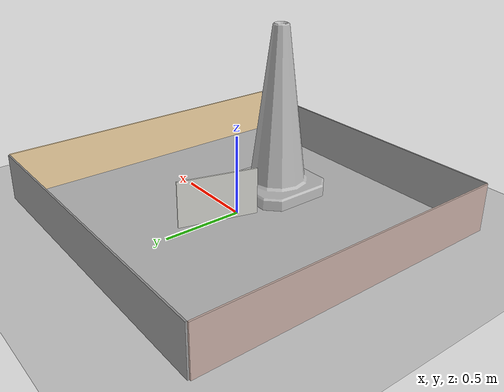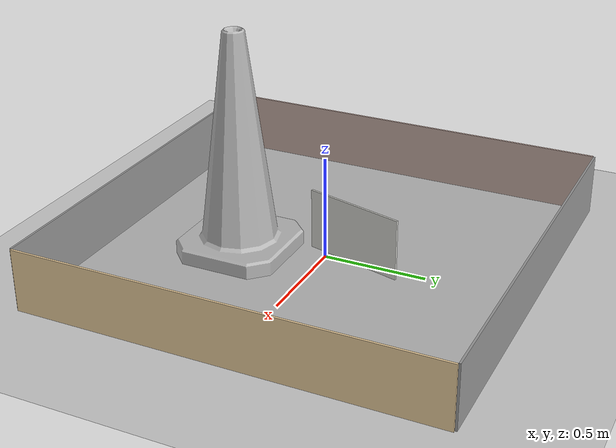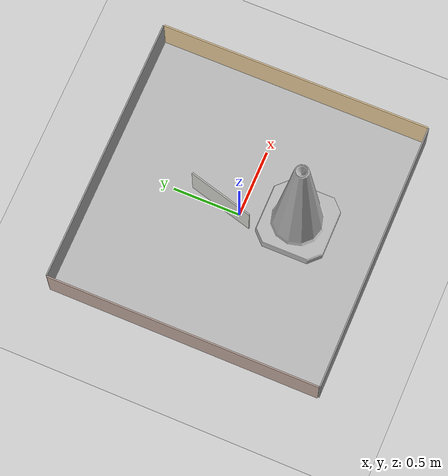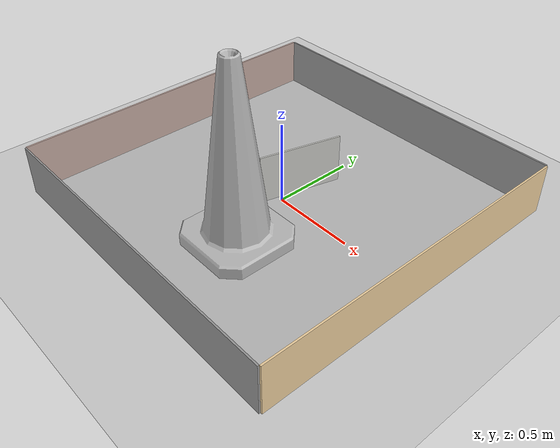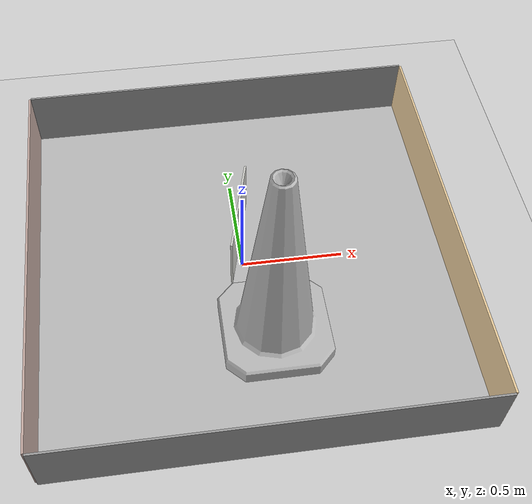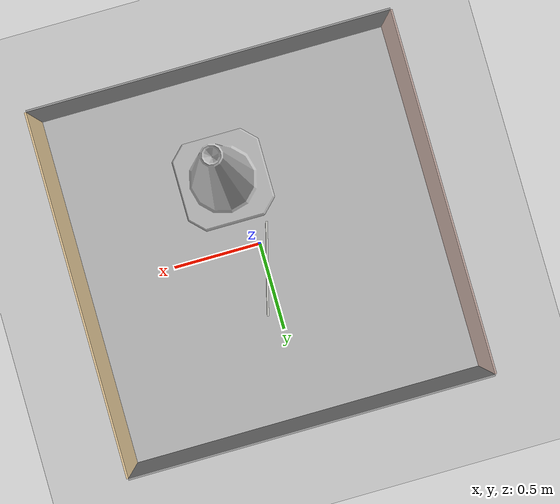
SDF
<sdf version="1.6">
 <world name="default">
  <gravity>0 0 -9.8</gravity>
  <magnetic_field>6e-06 2.3e-05 -4.2e-05</magnetic_field>
  <atmosphere type="adiabatic"/>
  <physics default="0" name="default_physics" type="ode">
   <max_step_size>0.001</max_step_size>
   <real_time_factor>1</real_time_factor>
   <real_time_update_rate>1000</real_time_update_rate>
  </physics>
  <scene><ambient>0.4 0.4 0.4 1</ambient><background>0.7 0.7 0.7 1</background><shadows>1</shadows></scene>
  <audio><device>default</device></audio>
  <spherical_coordinates>
   <surface_model>EARTH_WGS84</surface_model>
   <latitude_deg>0</latitude_deg>
   <longitude_deg>0</longitude_deg>
   <elevation>0</elevation>
   <heading_deg>0</heading_deg>
  </spherical_coordinates>
  <light name="sun" type="directional">
   <pose>0 0 10 0 -0 0</pose>
   <diffuse>0.8 0.8 0.8 1</diffuse>
   <specular>0.2 0.2 0.2 1</specular>
   <attenuation>
    <range>1000</range>
    <constant>0.9</constant>
    <linear>0.01</linear>
    <quadratic>0.001</quadratic>
   </attenuation>
   <direction>-0.5 0.1 -0.9</direction>
  </light>
  <include><uri>model://ground_plane</uri><name>ground_plane</name></include>
  <include>
   <uri>model://construction_cone</uri>
   <name>construction_cone</name>
   <pose>0.10 -0.40 0.00 0 -0 0</pose>
   <scale>0.2 0.2 0.2</scale>
  </include>
  <model name="pet_play_yard-02">
   <include><uri>model://pet_play_yard-floor02</uri><name>pet_play_yard-floor02</name></include>
   <link name="wall_obstacle-1">
    <pose>-0.000711 0.140953 0 0 -0 1.309</pose>
    <collision name="wall_obstacle-1_Collision">
     <geometry><box><size>0.5 0.01 0.3</size></box></geometry>
     <pose>0.00 0.00 0.15 0.0 -0.0 0.0</pose>
    </collision>
    <visual name="wall_obstacle-1_Visual">
     <pose>0.00 0.00 0.15 0 -0 0</pose>
     <geometry><box><size>0.5 0.01 0.3</size></box></geometry>
     <material>
      <script><uri>file://media/materials/scripts/gazebo.material</uri><name>Gazebo/CeilingTiled</name></script>
      <ambient>1 1 1 1</ambient>
     </material>
     <meta><layer>0</layer></meta>
    </visual>
   </link>
   <link name="wall_front">
    <pose>1.005 0.00 0.00 0 -0 -1.5707963268</pose>
    <collision name="wall_front_Collision">
     <geometry><box><size>2.0 0.01 0.3</size></box></geometry>
     <pose>0.00 0.00 0.15 0 -0 0</pose>
    </collision>
    <visual name="wall_front_Visual">
     <pose>0.00 0.00 0.15 0 -0 0</pose>
     <geometry><box><size>2.0 0.01 0.3</size></box></geometry>
     <material>
      <script><uri>file://media/materials/scripts/gazebo.material</uri><name>Gazebo/Grey</name></script>
      <ambient>0.921569 0.807843 0.615686 1</ambient>
     </material>
     <meta><layer>0</layer></meta>
    </visual>
   </link>
   <link name="wall_right">
    <pose>0.0 -1.005 0.0 0 -0 3.14159265359</pose>
    <collision name="wall_right_Collision">
     <geometry><box><size>2.0 0.01 0.3</size></box></geometry>
     <pose>0.00 0.00 0.15 0 -0 0</pose>
    </collision>
    <visual name="wall_right_Visual">
     <pose>0.00 0.00 0.15 0 -0 0</pose>
     <geometry><box><size>2.0 0.01 0.3</size></box></geometry>
     <material>
      <script><uri>file://media/materials/scripts/gazebo.material</uri><name>Gazebo/Grey</name></script>
      <ambient>1 1 1 1</ambient>
     </material>
     <meta><layer>0</layer></meta>
    </visual>
   </link>
   <link name="wall_rear">
    <pose>-1.005 0.00 0.00 0 -0 1.5707963268</pose>
    <collision name="wall_rear_Collision">
     <geometry><box><size>2.0 0.01 0.3</size></box></geometry>
     <pose>0.00 0.00 0.15 0 -0 0</pose>
    </collision>
    <visual name="wall_rear_Visual">
     <pose>0.00 0.00 0.15 0 -0 0</pose>
     <geometry><box><size>2.0 0.01 0.3</size></box></geometry>
     <material>
      <script><uri>file://media/materials/scripts/gazebo.material</uri><name>Gazebo/Grey</name></script>
      <ambient>0.760784 0.662745 0.627451 1</ambient>
     </material>
     <meta><layer>0</layer></meta>
    </visual>
   </link>
   <link name="wall_left">
    <pose>0.0 1.005 0.00 0 -0 0</pose>
    <collision name="wall_left_Collision">
     <geometry><box><size>2.0 0.01 0.3</size></box></geometry>
     <pose>0.00 0.00 0.15 0 -0 0</pose>
    </collision>
    <visual name="wall_left_Visual">
     <pose>0.00 0.00 0.15 0 -0 0</pose>
     <geometry><box><size>2.0 0.01 0.3</size></box></geometry>
     <material>
      <script><uri>file://media/materials/scripts/gazebo.material</uri><name>Gazebo/Grey</name></script>
      <ambient>1 1 1 1</ambient>
     </material>
     <meta><layer>0</layer></meta>
    </visual>
   </link>
   <static>1</static>
  </model>
 </world>
</sdf>

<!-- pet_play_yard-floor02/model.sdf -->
<sdf version="1.5">
  <model name="pet_play_yard-floor02">
    <!-- Floorimage "up" = "-x" -->
    <pose>0 0 0 0 0 0</pose>
    <link name="pet_play_yard-floor02_floor">
      <pose>0 0 0 0 0 3.1415</pose>

      <visual name="visual_floor">
        <geometry>
          <box>
            <!-- Floor size = 2x2m -->
            <size>2.0 2.0 1e-5</size>
          </box>
        </geometry>

        <material>
          <script>
            <uri>model://pet_play_yard-floor02/materials/scripts</uri>
            <uri>model://pet_play_yard-floor02/materials/textures</uri>
            <name>pet_play_yard-floor02</name>
          </script>
        </material>
        <pose>0 0 0.001 0 0 0</pose>
        <cast_shadows>1</cast_shadows>
        <transparency>0</transparency>
      </visual>

      <collision name="collision_floor">
        <pose>0 0 0.001 0 0 0</pose>
        <geometry>
          <box>
            <!-- Floor size = 2x2m -->
            <size>2.0 2.0 1e-5</size>
          </box>
        </geometry>
      </collision>

    </link>

    <static>1</static>
    <allow_auto_disable>1</allow_auto_disable>

  </model>
</sdf>

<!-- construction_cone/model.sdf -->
<sdf version="1.5">
  <model name="Construction Cone">
    <link name="link">
      <collision name="collision">
        <geometry>
          <mesh>
            <scale>10 10 10</scale>
            <uri>file://isr-testbed/construction_cone/meshes/construction_cone.dae</uri>
          </mesh>
        </geometry>
      </collision>
      <visual name="visual">
        <geometry>
          <mesh>
            <scale>10 10 10</scale>
            <uri>file://isr-testbed/construction_cone/meshes/construction_cone.dae</uri>
          </mesh>
        </geometry>
      </visual>
    </link>
  </model>
</sdf>
